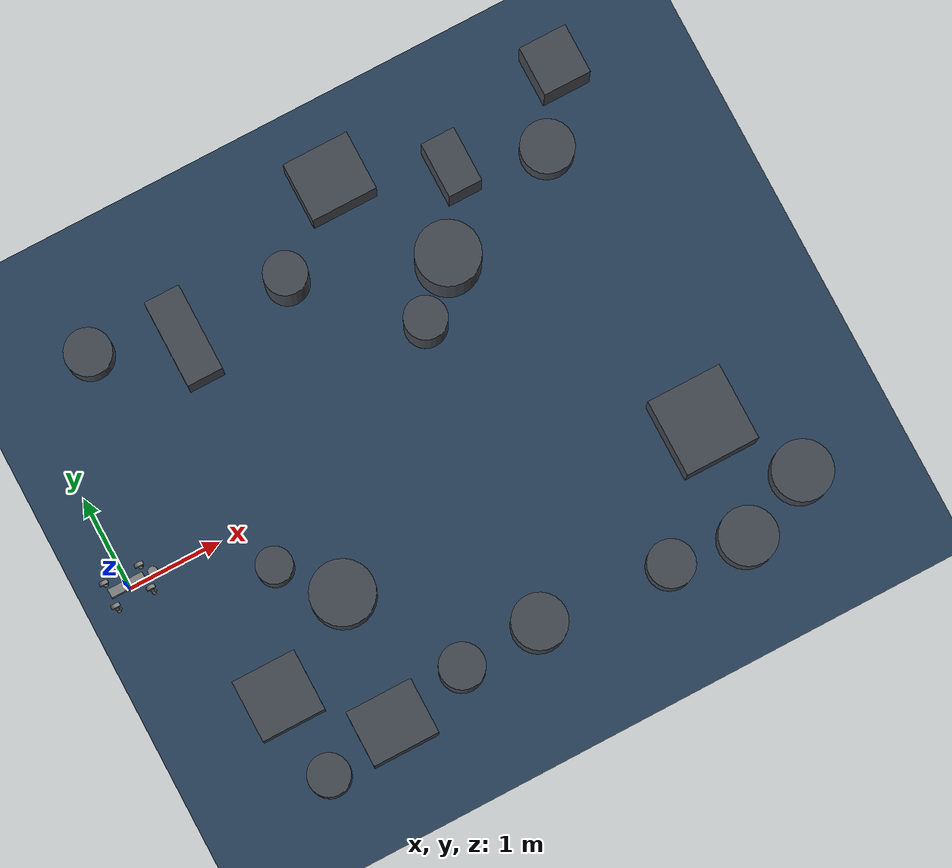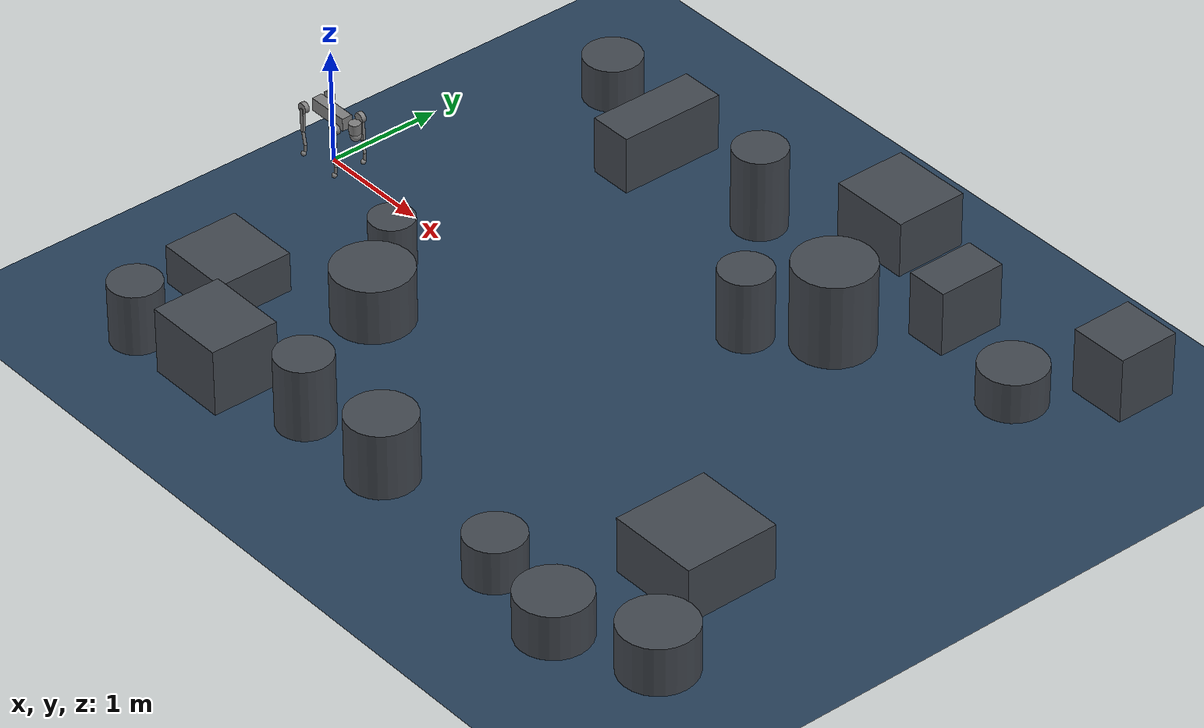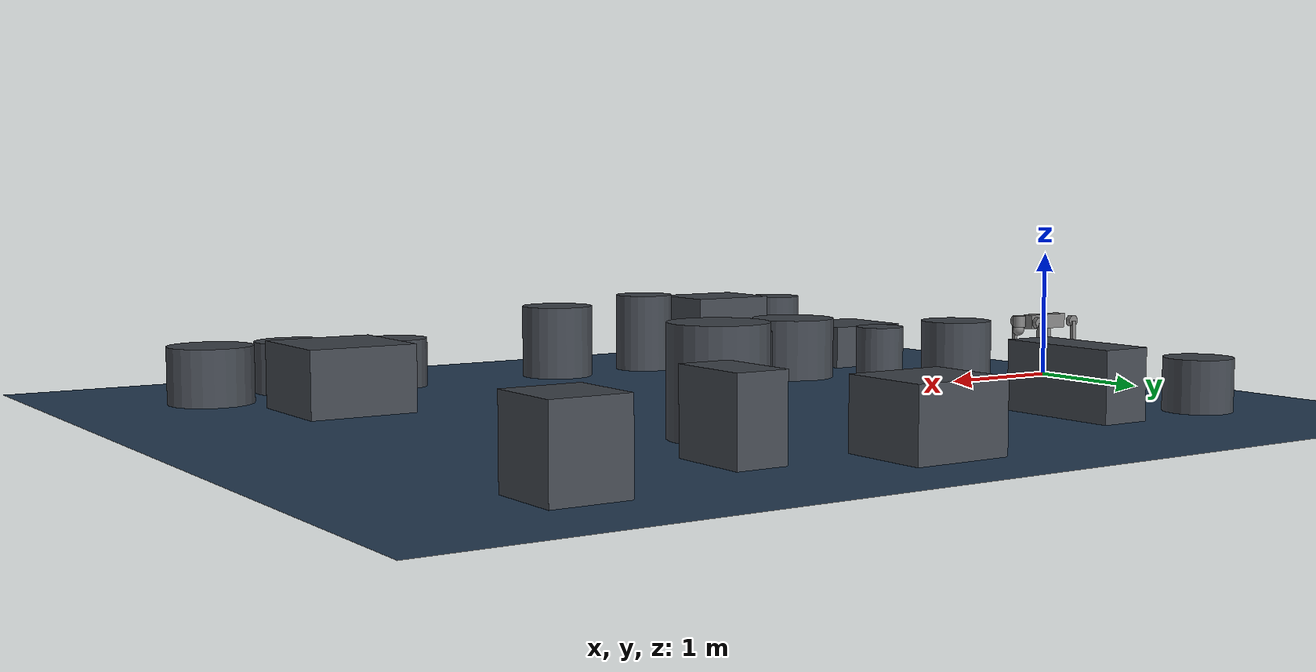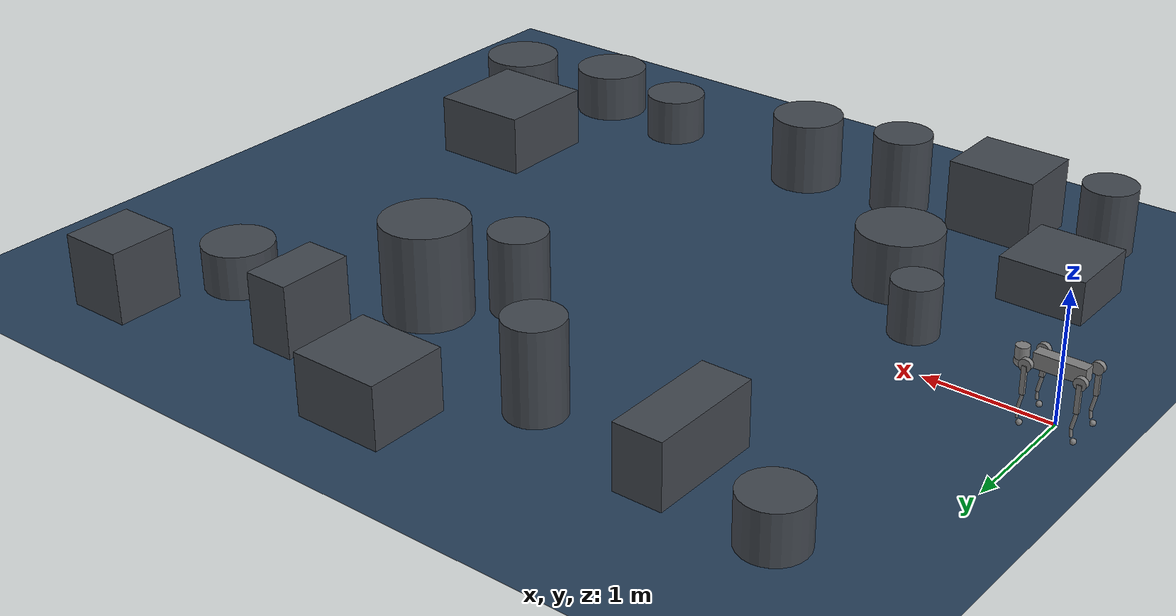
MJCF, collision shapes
<?xml version="1.0" encoding="utf-8"?>
<mujoco model="go2 random_scene_05">
  <include file="go2.xml" />
  <statistic center="3.5 0 0.1" extent="8" />
  <visual>
    <headlight diffuse="0.6 0.6 0.6" ambient="0.3 0.3 0.3" specular="0 0 0" />
    <rgba haze="0.15 0.25 0.35 1" />
    <global azimuth="135" elevation="-40" />
  </visual>
  <asset>
    <texture type="skybox" builtin="gradient" rgb1="0.3 0.5 0.7" rgb2="0 0 0" width="512" height="3072" />
    <texture type="2d" name="random_groundplane" builtin="checker" mark="edge" rgb1="0.2 0.3 0.4" rgb2="0.1 0.2 0.3" markrgb="0.8 0.8 0.8" width="300" height="300" />
    <material name="random_groundplane" texture="random_groundplane" texuniform="true" texrepeat="5 5" reflectance="0.2" />
  </asset>
  <worldbody>
    <light pos="1 0 7" dir="0 0 -1" directional="true" />
    <geom name="floor" type="plane" pos="3.5 0 0" size="4 3.5 0.05" material="random_groundplane" />
    <geom name="ppt_obstacle_01" type="box" pos="1.6168273010976431 1.9187685810273059 0.25228970591787914" size="0.19215264548053931 0.46776397276450721 0.25228970591787914" rgba="0.26 0.28 0.31 1" />
    <geom name="ppt_obstacle_02" type="cylinder" pos="4.2812772058362585 1.3950703980907888 0.37376107686695087" size="0.33544907943831326 0.37376107686695087" rgba="0.26 0.28 0.31 1" />
    <geom name="ppt_obstacle_03" type="box" pos="3.6238325962069267 2.6519591632512065 0.24263801622152859" size="0.3544221062442745 0.31758263462645758 0.24263801622152859" rgba="0.26 0.28 0.31 1" />
    <geom name="ppt_obstacle_04" type="cylinder" pos="5.6785966056055184 1.9336564901313511 0.17589193104222695" size="0.27889657642383975 0.17589193104222695" rgba="0.26 0.28 0.31 1" />
    <geom name="ppt_obstacle_05" type="cylinder" pos="1.8244447689948191 -1.0477868581776615 0.24133846412555354" size="0.33464739321342818 0.24133846412555354" rgba="0.26 0.28 0.31 1" />
    <geom name="ppt_obstacle_06" type="box" pos="5.7379131270703452 -1.1987420313045904 0.24324029079971091" size="0.39725055831736733 0.41050387248374198 0.24324029079971091" rgba="0.26 0.28 0.31 1" />
    <geom name="ppt_obstacle_07" type="cylinder" pos="2.7802133016505324 1.9664021397987139 0.36221059963664537" size="0.22589369573857795 0.36221059963664537" rgba="0.26 0.28 0.31 1" />
    <geom name="ppt_obstacle_08" type="cylinder" pos="0.88393117925111164 -2.5582176139812014 0.26734034088780795" size="0.21851835743492148 0.26734034088780795" rgba="0.26 0.28 0.31 1" />
    <geom name="ppt_obstacle_09" type="cylinder" pos="1.3599986227710805 -0.49353509488509495 0.21508253039320502" size="0.18941336036731082 0.21508253039320502" rgba="0.26 0.28 0.31 1" />
    <geom name="ppt_obstacle_10" type="cylinder" pos="0.71370820808104263 2.2307895623897269 0.19109701580215346" size="0.24700955527864532 0.19109701580215346" rgba="0.26 0.28 0.31 1" />
    <geom name="ppt_obstacle_11" type="cylinder" pos="5.5990325089999935 -2.4057689603897039 0.19588764505510947" size="0.30275780412759046 0.19588764505510947" rgba="0.26 0.28 0.31 1" />
    <geom name="ppt_obstacle_12" type="box" pos="4.7453541382223445 2.203381233743047 0.28361512415858864" size="0.18225592780368632 0.2976191005650064 0.28361512415858864" rgba="0.26 0.28 0.31 1" />
    <geom name="ppt_obstacle_13" type="box" pos="1.6642439585056672 -2.3980832743840792 0.28857711639293071" size="0.35568165150918668 0.2964565094893245 0.28857711639293071" rgba="0.26 0.28 0.31 1" />
    <geom name="ppt_obstacle_14" type="cylinder" pos="6.3705127797449652 -2.0889424758503559 0.21185695229975182" size="0.31363584191977684 0.21185695229975182" rgba="0.26 0.28 0.31 1" />
    <geom name="ppt_obstacle_15" type="cylinder" pos="3.7955281189665735 0.94780022780461026 0.31347936384352748" size="0.22359301046162311 0.31347936384352748" rgba="0.26 0.28 0.31 1" />
    <geom name="ppt_obstacle_16" type="box" pos="0.80487614429570153 -1.637146355501131 0.17438321553593822" size="0.34111245034667803 0.32902814369631539 0.17438321553593822" rgba="0.26 0.28 0.31 1" />
    <geom name="ppt_obstacle_17" type="cylinder" pos="4.8034900617927851 -2.2919245999112556 0.18925148389914251" size="0.24619179768030247 0.18925148389914251" rgba="0.26 0.28 0.31 1" />
    <geom name="ppt_obstacle_18" type="box" pos="6.127139329179518 2.6308213578630482 0.28286346918429905" size="0.25660871935049356 0.26727512851931207 0.28286346918429905" rgba="0.26 0.28 0.31 1" />
    <geom name="ppt_obstacle_19" type="cylinder" pos="3.3883913013602136 -2.2001572909534612 0.28874329805085031" size="0.28622277159067988 0.28874329805085031" rgba="0.26 0.28 0.31 1" />
    <geom name="ppt_obstacle_20" type="cylinder" pos="2.5166375098609084 -2.2329732953328612 0.31618106582890954" size="0.23530167218380993 0.31618106582890954" rgba="0.26 0.28 0.31 1" />
  </worldbody>
</mujoco>

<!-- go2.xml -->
<mujoco model="go2">
  <compiler angle="radian" meshdir="assets" autolimits="true" />

  <option cone="elliptic" impratio="100" />

  <default>
    <default class="go2">
      <geom friction="0.4" margin="0.001" condim="1"/>
      <joint axis="0 1 0" damping="0.1" armature="0.01" frictionloss="0.2"/>
      <motor ctrlrange="-23.7 23.7"/>
      <default class="abduction">
        <joint axis="1 0 0" range="-1.0472 1.0472"/>
      </default>
      <default class="hip">
        <default class="front_hip">
          <joint range="-1.5708 3.4907"/>
        </default>
        <default class="back_hip">
          <joint range="-0.5236 4.5379"/>
        </default>
      </default>
      <default class="knee">
        <joint range="-2.7227 -0.83776"/>
        <motor ctrlrange="-45.43 45.43"/>
      </default>
      <default class="visual">
        <geom type="mesh" contype="0" conaffinity="0" group="2"/>
      </default>
      <default class="collision">
        <geom group="3"/>
        <default class="foot">
          <geom size="0.022" pos="-0.002 0 -0.213" priority="1" condim="6"
            friction="0.4 0.02 0.01"/>
        </default>
      </default>
    </default>
  </default>

  <asset>
    <material name="metal" rgba=".9 .95 .95 1" />
    <material name="black" rgba="0 0 0 1" />
    <material name="white" rgba="1 1 1 1" />
    <material name="gray" rgba="0.671705 0.692426 0.774270 1" />
    <material name="transparent" rgba="1 1 1 0.01" />

    <mesh file="base_0.obj" />
    <mesh file="base_1.obj" />
    <mesh file="base_2.obj" />
    <mesh file="base_3.obj" />
    <mesh file="base_4.obj" />
    <mesh file="hip_0.obj" />
    <mesh file="hip_1.obj" />
    <mesh file="thigh_0.obj" />
    <mesh file="thigh_1.obj" />
    <mesh file="thigh_mirror_0.obj" />
    <mesh file="thigh_mirror_1.obj" />
    <mesh file="calf_0.obj" />
    <mesh file="calf_1.obj" />
    <mesh file="calf_mirror_0.obj" />
    <mesh file="calf_mirror_1.obj" />
    <mesh file="foot.obj" />
  </asset>

  <worldbody>
    <body name="base_link" pos="0 0 0.445" childclass="go2">
      <inertial pos="0.021112 0 -0.005366" quat="-0.000543471 0.713435 -0.00173769 0.700719"
        mass="6.921"
        diaginertia="0.107027 0.0980771 0.0244531" />
      <freejoint />
      <geom mesh="base_0" material="black" class="visual" />
      <geom mesh="base_1" material="black" class="visual" />
      <geom mesh="base_2" material="black" class="visual" />
      <geom mesh="base_3" material="white" class="visual" />
      <geom mesh="base_4" material="gray" class="visual" />
      <geom size="0.1881 0.04675 0.057" type="box" class="collision" />
      <geom size="0.05 0.045" pos="0.285 0 0.01" type="cylinder" class="collision" />
      <geom size="0.047" pos="0.293 0 -0.06" class="collision" />
      <site name="imu" pos="-0.02557 0 0.04232" />
      <body name="FL_hip" pos="0.1934 0.0465 0">
        <inertial pos="-0.0054 0.00194 -0.000105" quat="0.497014 0.499245 0.505462 0.498237"
          mass="0.678"
          diaginertia="0.00088403 0.000596003 0.000479967" />
        <joint name="FL_hip_joint" class="abduction" />
        <geom mesh="hip_0" material="metal" class="visual" />
        <geom mesh="hip_1" material="gray" class="visual" />
        <geom size="0.046 0.02" pos="0 0.08 0" quat="1 1 0 0" type="cylinder" class="collision" />
        <body name="FL_thigh" pos="0 0.0955 0">
          <inertial pos="-0.00374 -0.0223 -0.0327" quat="0.829533 0.0847635 -0.0200632 0.551623"
            mass="1.152"
            diaginertia="0.00594973 0.00584149 0.000878787" />
          <joint name="FL_thigh_joint" class="front_hip" />
          <geom mesh="thigh_0" material="metal" class="visual" />
          <geom mesh="thigh_1" material="gray" class="visual" />
          <geom size="0.1065 0.01225 0.017" pos="0 0 -0.1065" quat="0.707107 0 0.707107 0"
            type="box" class="collision" />
          <body name="FL_calf" pos="0 0 -0.213">
            <inertial pos="0.00629595 -0.000622121 -0.141417"
              quat="0.710672 0.00154099 -0.00450087 0.703508"
              mass="0.241352" diaginertia="0.0014901 0.00146356 5.31397e-05" />
            <joint name="FL_calf_joint" class="knee" />
            <geom mesh="calf_0" material="gray" class="visual" />
            <geom mesh="calf_1" material="black" class="visual" />
            <geom size="0.012 0.06" pos="0.008 0 -0.06" quat="0.994493 0 -0.104807 0"
              type="cylinder" class="collision" />
            <geom size="0.011 0.0325" pos="0.02 0 -0.148" quat="0.999688 0 0.0249974 0"
              type="cylinder" class="collision" />
            <geom pos="0 0 -0.213" mesh="foot" class="visual" material="black" />
            <geom name="FL" class="foot" />
            <site name="FL_touch" pos="0 0 -0.213" size="0.027" material="transparent"/>
            <body name="FL_foot" pos="0 0 -0.213"/>
          </body>
        </body>
      </body>
      <body name="FR_hip" pos="0.1934 -0.0465 0">
        <inertial pos="-0.0054 -0.00194 -0.000105" quat="0.498237 0.505462 0.499245 0.497014"
          mass="0.678"
          diaginertia="0.00088403 0.000596003 0.000479967" />
        <joint name="FR_hip_joint" class="abduction" />
        <geom mesh="hip_0" material="metal" class="visual" quat="4.63268e-05 1 0 0" />
        <geom mesh="hip_1" material="gray" class="visual" quat="4.63268e-05 1 0 0" />
        <geom size="0.046 0.02" pos="0 -0.08 0" quat="0.707107 0.707107 0 0" type="cylinder"
          class="collision" />
        <body name="FR_thigh" pos="0 -0.0955 0">
          <inertial pos="-0.00374 0.0223 -0.0327" quat="0.551623 -0.0200632 0.0847635 0.829533"
            mass="1.152"
            diaginertia="0.00594973 0.00584149 0.000878787" />
          <joint name="FR_thigh_joint" class="front_hip" />
          <geom mesh="thigh_mirror_0" material="metal" class="visual" />
          <geom mesh="thigh_mirror_1" material="gray" class="visual" />
          <geom size="0.1065 0.01225 0.017" pos="0 0 -0.1065" quat="0.707107 0 0.707107 0"
            type="box" class="collision" />
          <body name="FR_calf" pos="0 0 -0.213">
            <inertial pos="0.00629595 0.000622121 -0.141417"
              quat="0.703508 -0.00450087 0.00154099 0.710672"
              mass="0.241352" diaginertia="0.0014901 0.00146356 5.31397e-05" />
            <joint name="FR_calf_joint" class="knee" />
            <geom mesh="calf_mirror_0" material="gray" class="visual" />
            <geom mesh="calf_mirror_1" material="black" class="visual" />
            <geom size="0.013 0.06" pos="0.01 0 -0.06" quat="0.995004 0 -0.0998334 0"
              type="cylinder" class="collision" />
            <geom size="0.011 0.0325" pos="0.02 0 -0.148" quat="0.999688 0 0.0249974 0"
              type="cylinder" class="collision" />
            <geom pos="0 0 -0.213" mesh="foot" class="visual" material="black" />
            <geom name="FR" class="foot" />
            <site name="FR_touch" pos="0 0 -0.213" size="0.027" material="transparent"/>
            <body name="FR_foot" pos="0 0 -0.213"/>
          </body>
        </body>
      </body>
      <body name="RL_hip" pos="-0.1934 0.0465 0">
        <inertial pos="0.0054 0.00194 -0.000105" quat="0.505462 0.498237 0.497014 0.499245"
          mass="0.678"
          diaginertia="0.00088403 0.000596003 0.000479967" />
        <joint name="RL_hip_joint" class="abduction" />
        <geom mesh="hip_0" material="metal" class="visual" quat="4.63268e-05 0 1 0" />
        <geom mesh="hip_1" material="gray" class="visual" quat="4.63268e-05 0 1 0" />
        <geom size="0.046 0.02" pos="0 0.08 0" quat="0.707107 0.707107 0 0" type="cylinder"
          class="collision" />
        <body name="RL_thigh" pos="0 0.0955 0">
          <inertial pos="-0.00374 -0.0223 -0.0327" quat="0.829533 0.0847635 -0.0200632 0.551623"
            mass="1.152"
            diaginertia="0.00594973 0.00584149 0.000878787" />
          <joint name="RL_thigh_joint" class="back_hip" />
          <geom mesh="thigh_0" material="metal" class="visual" />
          <geom mesh="thigh_1" material="gray" class="visual" />
          <geom size="0.1065 0.01225 0.017" pos="0 0 -0.1065" quat="0.707107 0 0.707107 0"
            type="box" class="collision" />
          <body name="RL_calf" pos="0 0 -0.213">
            <inertial pos="0.00629595 -0.000622121 -0.141417"
              quat="0.710672 0.00154099 -0.00450087 0.703508"
              mass="0.241352" diaginertia="0.0014901 0.00146356 5.31397e-05" />
            <joint name="RL_calf_joint" class="knee" />
            <geom mesh="calf_0" material="gray" class="visual" />
            <geom mesh="calf_1" material="black" class="visual" />
            <geom size="0.013 0.06" pos="0.01 0 -0.06" quat="0.995004 0 -0.0998334 0"
              type="cylinder" class="collision" />
            <geom size="0.011 0.0325" pos="0.02 0 -0.148" quat="0.999688 0 0.0249974 0"
              type="cylinder" class="collision" />
            <geom pos="0 0 -0.213" mesh="foot" class="visual" material="black" />
            <geom name="RL" class="foot" />
            <site name="RL_touch" pos="0 0 -0.213" size="0.027" material="transparent"/>
            <body name="RL_foot" pos="0 0 -0.213" />
          </body>
        </body>
      </body>
      <body name="RR_hip" pos="-0.1934 -0.0465 0">
        <inertial pos="0.0054 -0.00194 -0.000105" quat="0.499245 0.497014 0.498237 0.505462"
          mass="0.678"
          diaginertia="0.00088403 0.000596003 0.000479967" />
        <joint name="RR_hip_joint" class="abduction" />
        <geom mesh="hip_0" material="metal" class="visual"
          quat="2.14617e-09 4.63268e-05 4.63268e-05 -1" />
        <geom mesh="hip_1" material="gray" class="visual"
          quat="2.14617e-09 4.63268e-05 4.63268e-05 -1" />
        <geom size="0.046 0.02" pos="0 -0.08 0" quat="0.707107 0.707107 0 0" type="cylinder"
          class="collision" />
        <body name="RR_thigh" pos="0 -0.0955 0">
          <inertial pos="-0.00374 0.0223 -0.0327" quat="0.551623 -0.0200632 0.0847635 0.829533"
            mass="1.152"
            diaginertia="0.00594973 0.00584149 0.000878787" />
          <joint name="RR_thigh_joint" class="back_hip" />
          <geom mesh="thigh_mirror_0" material="metal" class="visual" />
          <geom mesh="thigh_mirror_1" material="gray" class="visual" />
          <geom size="0.1065 0.01225 0.017" pos="0 0 -0.1065" quat="0.707107 0 0.707107 0"
            type="box" class="collision" />
          <body name="RR_calf" pos="0 0 -0.213">
            <inertial pos="0.00629595 0.000622121 -0.141417"
              quat="0.703508 -0.00450087 0.00154099 0.710672"
              mass="0.241352" diaginertia="0.0014901 0.00146356 5.31397e-05" />
            <joint name="RR_calf_joint" class="knee" />
            <geom mesh="calf_mirror_0" material="gray" class="visual" />
            <geom mesh="calf_mirror_1" material="black" class="visual" />
            <geom size="0.013 0.06" pos="0.01 0 -0.06" quat="0.995004 0 -0.0998334 0"
              type="cylinder" class="collision" />
            <geom size="0.011 0.0325" pos="0.02 0 -0.148" quat="0.999688 0 0.0249974 0"
              type="cylinder" class="collision" />
            <geom pos="0 0 -0.213" mesh="foot" class="visual" material="black" />
            <geom name="RR" class="foot" />
            <site name="RR_touch" pos="0 0 -0.213" size="0.027" material="transparent"/>
            <body name="RR_foot" pos="0 0 -0.213"/>
          </body>
        </body>
      </body>
    </body>
  </worldbody>

  <actuator>
    <motor class="abduction" name="FR_hip" joint="FR_hip_joint" />
    <motor class="hip" name="FR_thigh" joint="FR_thigh_joint" />
    <motor class="knee" name="FR_calf" joint="FR_calf_joint" />
    <motor class="abduction" name="FL_hip" joint="FL_hip_joint" />
    <motor class="hip" name="FL_thigh" joint="FL_thigh_joint" />
    <motor class="knee" name="FL_calf" joint="FL_calf_joint" />
    <motor class="abduction" name="RR_hip" joint="RR_hip_joint" />
    <motor class="hip" name="RR_thigh" joint="RR_thigh_joint" />
    <motor class="knee" name="RR_calf" joint="RR_calf_joint" />
    <motor class="abduction" name="RL_hip" joint="RL_hip_joint" />
    <motor class="hip" name="RL_thigh" joint="RL_thigh_joint" />
    <motor class="knee" name="RL_calf" joint="RL_calf_joint" />
  </actuator>

  <sensor>
    <jointpos name="FR_hip_pos" joint="FR_hip_joint" />
    <jointpos name="FR_thigh_pos" joint="FR_thigh_joint" />
    <jointpos name="FR_calf_pos" joint="FR_calf_joint" />
    <jointpos name="FL_hip_pos" joint="FL_hip_joint" />
    <jointpos name="FL_thigh_pos" joint="FL_thigh_joint" />
    <jointpos name="FL_calf_pos" joint="FL_calf_joint" />
    <jointpos name="RR_hip_pos" joint="RR_hip_joint" />
    <jointpos name="RR_thigh_pos" joint="RR_thigh_joint" />
    <jointpos name="RR_calf_pos" joint="RR_calf_joint" />
    <jointpos name="RL_hip_pos" joint="RL_hip_joint" />
    <jointpos name="RL_thigh_pos" joint="RL_thigh_joint" />
    <jointpos name="RL_calf_pos" joint="RL_calf_joint" />

    <jointvel name="FR_hip_vel" joint="FR_hip_joint" />
    <jointvel name="FR_thigh_vel" joint="FR_thigh_joint" />
    <jointvel name="FR_calf_vel" joint="FR_calf_joint" />
    <jointvel name="FL_hip_vel" joint="FL_hip_joint" />
    <jointvel name="FL_thigh_vel" joint="FL_thigh_joint" />
    <jointvel name="FL_calf_vel" joint="FL_calf_joint" />
    <jointvel name="RR_hip_vel" joint="RR_hip_joint" />
    <jointvel name="RR_thigh_vel" joint="RR_thigh_joint" />
    <jointvel name="RR_calf_vel" joint="RR_calf_joint" />
    <jointvel name="RL_hip_vel" joint="RL_hip_joint" />
    <jointvel name="RL_thigh_vel" joint="RL_thigh_joint" />
    <jointvel name="RL_calf_vel" joint="RL_calf_joint" />

    <jointactuatorfrc name="FR_hip_torque" joint="FR_hip_joint" noise="0.01" />
    <jointactuatorfrc name="FR_thigh_torque" joint="FR_thigh_joint" noise="0.01" />
    <jointactuatorfrc name="FR_calf_torque" joint="FR_calf_joint" noise="0.01" />
    <jointactuatorfrc name="FL_hip_torque" joint="FL_hip_joint" noise="0.01" />
    <jointactuatorfrc name="FL_thigh_torque" joint="FL_thigh_joint" noise="0.01" />
    <jointactuatorfrc name="FL_calf_torque" joint="FL_calf_joint" noise="0.01" />
    <jointactuatorfrc name="RR_hip_torque" joint="RR_hip_joint" noise="0.01" />
    <jointactuatorfrc name="RR_thigh_torque" joint="RR_thigh_joint" noise="0.01" />
    <jointactuatorfrc name="RR_calf_torque" joint="RR_calf_joint" noise="0.01" />
    <jointactuatorfrc name="RL_hip_torque" joint="RL_hip_joint" noise="0.01" />
    <jointactuatorfrc name="RL_thigh_torque" joint="RL_thigh_joint" noise="0.01" />
    <jointactuatorfrc name="RL_calf_torque" joint="RL_calf_joint" noise="0.01" />

    <framequat name="imu_quat" objtype="site" objname="imu" />
    <gyro name="imu_gyro" site="imu" />
    <accelerometer name="imu_acc" site="imu" />

    <framepos name="frame_pos" objtype="site" objname="imu" />
    <framelinvel name="frame_vel" objtype="site" objname="imu" />

    <touch name="FR_touch" site="FR_touch" />
    <touch name="FL_touch" site="FL_touch" />
    <touch name="RR_touch" site="RR_touch" />
    <touch name="RL_touch" site="RL_touch" />
  </sensor>

  <keyframe>
    <key name="home" qpos="0 0 0.445 1 0 0 0 0 0.8 -1.5 0 0.8 -1.5 0 0.8 -1.5 0 0.8 -1.5"
         ctrl="0 0 0 0 0 0 0 0 0 0 0 0" />
  </keyframe>
</mujoco>
